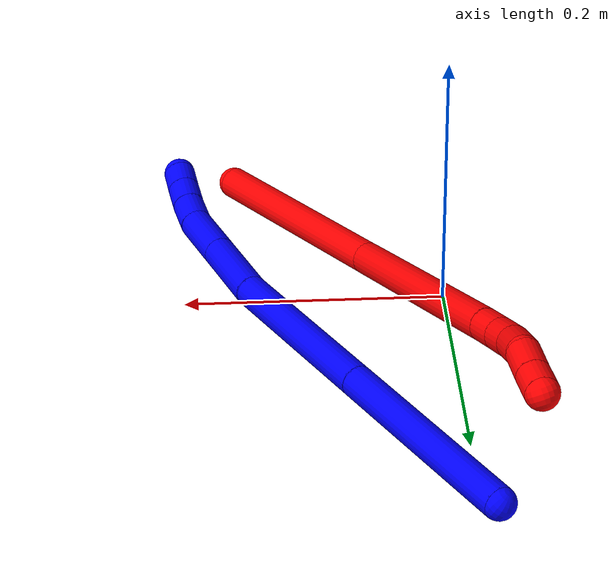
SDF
<sdf version="1.7">
 <world name="default">
  <plugin name="TubeGeneratorPlugin" filename="libtube_generator_plugin.so"/>
  <model name="photoneo_s_sensor">
   <static>1</static>
   <pose>0 0 2 1.57079 1.57079 3.14159</pose>
   <link name="link">
    <inertial><mass>0.1</mass></inertial>
    <sensor name="sensor" type="depth">
     <update_rate>30</update_rate>
     <camera>
      <horizontal_fov>1.22</horizontal_fov>
      <image><width>1920</width><height>1200</height><format>B8G8R8</format></image>
      <clip><near>0.1</near><far>4</far></clip>
      <depth_camera><output>points</output></depth_camera>
     </camera>
     <plugin name="camera_plugin" filename="libgazebo_ros_depth_camera.so">
      <baseline>0.2</baseline>
      <alwaysOn>1</alwaysOn>
      <updateRate>0.0</updateRate>
      <cameraName>camera_ir</cameraName>
      <imageTopicName>/camera/color/image_raw</imageTopicName>
      <cameraInfoTopicName>/camera/color/camera_info</cameraInfoTopicName>
      <depthImageTopicName>/camera/depth/image_raw</depthImageTopicName>
      <depthImageCameraInfoTopicName>/camera/depth/camera_info</depthImageCameraInfoTopicName>
      <pointCloudTopicName>/camera/depth/points</pointCloudTopicName>
      <frameName>fr_optical</frameName>
      <pointCloudCutoff>0.1</pointCloudCutoff>
      <pointCloudCutoffMax>2.0</pointCloudCutoffMax>
      <distortionK1>0</distortionK1>
      <distortionK2>0</distortionK2>
      <distortionK3>0</distortionK3>
      <distortionT1>0</distortionT1>
      <distortionT2>0</distortionT2>
      <CxPrime>0</CxPrime>
      <Cx>0</Cx>
      <Cy>0</Cy>
      <focalLength>0</focalLength>
      <hackBaseline>0</hackBaseline>
     </plugin>
    </sensor>
   </link>
  </model>
  <gravity>0 0 -9.8</gravity>
  <magnetic_field>6e-06 2.3e-05 -4.2e-05</magnetic_field>
  <atmosphere type="adiabatic"/>
  <physics name="default_physics" default="0" type="ode">
   <max_step_size>0.003</max_step_size>
   <real_time_factor>1</real_time_factor>
   <real_time_update_rate>1000</real_time_update_rate>
   <max_contacts>10000</max_contacts>
   <ode>
    <solver>
     <type>quick</type>
     <iters>100</iters>
     <sor>1.3</sor>
     <use_dynamic_moi_rescaling>0</use_dynamic_moi_rescaling>
    </solver>
    <constraints>
     <contact_max_correcting_vel>0</contact_max_correcting_vel>
     <contact_surface_layer>0.001</contact_surface_layer>
     <cfm>0</cfm>
     <erp>0.2</erp>
    </constraints>
   </ode>
  </physics>
  <scene><ambient>0.4 0.4 0.4 1</ambient><background>0.7 0.7 0.7 1</background><shadows>0</shadows></scene>
  <audio><device>default</device></audio>
  <spherical_coordinates>
   <surface_model>EARTH_WGS84</surface_model>
   <latitude_deg>0</latitude_deg>
   <longitude_deg>0</longitude_deg>
   <elevation>0</elevation>
   <heading_deg>0</heading_deg>
  </spherical_coordinates>
  <model name="bin">
   <static>1</static>
   <link name="bottom">
    <collision name="collision-bottom">
     <pose>0 0 -0.01 0 -0 0</pose>
     <geometry><box><size>0.8 0.6 0.02</size></box></geometry>
     <surface>
      <friction><ode><mu>100</mu><mu2>100</mu2></ode></friction>
      <contact><collide_bitmask>65535</collide_bitmask></contact>
     </surface>
    </collision>
   </link>
   <link name="west_wall">
    <collision name="collision-west_wall">
     <pose>-0.41 0 0.1 0 -0 0</pose>
     <geometry><box><size>0.02 0.6 0.2</size></box></geometry>
     <surface>
      <friction><ode><mu>100</mu><mu2>100</mu2></ode></friction>
      <contact><collide_bitmask>65535</collide_bitmask></contact>
     </surface>
    </collision>
   </link>
   <link name="east_wall">
    <collision name="collision-east_wall">
     <pose>0.41 0 0.1 0 -0 0</pose>
     <geometry><box><size>0.02 0.6 0.2</size></box></geometry>
     <surface>
      <friction><ode><mu>100</mu><mu2>100</mu2></ode></friction>
      <contact><collide_bitmask>65535</collide_bitmask></contact>
     </surface>
    </collision>
   </link>
   <link name="south_wall">
    <collision name="collision-south_wall">
     <pose>0 -0.31 0.1 0 -0 0</pose>
     <geometry><box><size>0.8 0.02 0.2</size></box></geometry>
     <surface>
      <friction><ode><mu>100</mu><mu2>100</mu2></ode></friction>
      <contact><collide_bitmask>65535</collide_bitmask></contact>
     </surface>
    </collision>
   </link>
   <link name="north_wall">
    <collision name="collision-north_wall">
     <pose>0 0.31 0.1 0 -0 0</pose>
     <geometry><box><size>0.8 0.02 0.2</size></box></geometry>
     <surface>
      <friction><ode><mu>100</mu><mu2>100</mu2></ode></friction>
      <contact><collide_bitmask>65535</collide_bitmask></contact>
     </surface>
    </collision>
   </link>
  </model>
  <model name="1">
   <static>0</static>
   <link name="1">
    <collision name="collision-cylinder-e_1_1_4">
     <pose>0.042161 -0.06659 -0.033573 2.03778 0.514552 0.807647</pose>
     <geometry><cylinder><radius>0.0125</radius><length>0.171336</length></cylinder></geometry>
     <surface>
      <friction><ode><mu>1.16</mu><mu2>1.16</mu2><slip1>0</slip1><slip2>0</slip2></ode></friction>
      <contact><ode><kp>1e+06</kp><kd>1</kd><max_vel>0</max_vel><min_depth>0.001</min_depth></ode></contact>
     </surface>
    </collision>
    <visual name="visual-cylinder-e_1_1_4">
     <pose>0.042161 -0.06659 -0.033573 2.03778 0.514552 0.807647</pose>
     <geometry><cylinder><radius>0.0125</radius><length>0.171336</length></cylinder></geometry>
     <material><ambient>0 0 1 1</ambient></material>
    </visual>
    <collision name="collision-cylinder-e_2_4_5">
     <pose>0.118409 -0.193458 -0.098615 2.05194 0.464692 0.744504</pose>
     <geometry><cylinder><radius>0.0125</radius><length>0.152125</length></cylinder></geometry>
     <surface>
      <friction><ode><mu>1.16</mu><mu2>1.16</mu2><slip1>0</slip1><slip2>0</slip2></ode></friction>
      <contact><ode><kp>1e+06</kp><kd>1</kd><max_vel>0</max_vel><min_depth>0.001</min_depth></ode></contact>
     </surface>
    </collision>
    <visual name="visual-cylinder-e_2_4_5">
     <pose>0.118409 -0.193458 -0.098615 2.05194 0.464692 0.744504</pose>
     <geometry><cylinder><radius>0.0125</radius><length>0.152125</length></cylinder></geometry>
     <material><ambient>0 0 1 1</ambient></material>
    </visual>
    <collision name="collision-cylinder-e_3_5_6">
     <pose>0.164178 -0.281671 -0.141384 1.95517 0.369803 0.54122</pose>
     <geometry><cylinder><radius>0.0125</radius><length>0.064641</length></cylinder></geometry>
     <surface>
      <friction><ode><mu>1.16</mu><mu2>1.16</mu2><slip1>0</slip1><slip2>0</slip2></ode></friction>
      <contact><ode><kp>1e+06</kp><kd>1</kd><max_vel>0</max_vel><min_depth>0.001</min_depth></ode></contact>
     </surface>
    </collision>
    <visual name="visual-cylinder-e_3_5_6">
     <pose>0.164178 -0.281671 -0.141384 1.95517 0.369803 0.54122</pose>
     <geometry><cylinder><radius>0.0125</radius><length>0.064641</length></cylinder></geometry>
     <material><ambient>0 0 1 1</ambient></material>
    </visual>
    <collision name="collision-cylinder-e_4_6_7">
     <pose>0.185174 -0.329846 -0.160506 1.9396 0.405495 0.582625</pose>
     <geometry><cylinder><radius>0.0125</radius><length>0.047225</length></cylinder></geometry>
     <surface>
      <friction><ode><mu>1.16</mu><mu2>1.16</mu2><slip1>0</slip1><slip2>0</slip2></ode></friction>
      <contact><ode><kp>1e+06</kp><kd>1</kd><max_vel>0</max_vel><min_depth>0.001</min_depth></ode></contact>
     </surface>
    </collision>
    <visual name="visual-cylinder-e_4_6_7">
     <pose>0.185174 -0.329846 -0.160506 1.9396 0.405495 0.582625</pose>
     <geometry><cylinder><radius>0.0125</radius><length>0.047225</length></cylinder></geometry>
     <material><ambient>0 0 1 1</ambient></material>
    </visual>
    <collision name="collision-cylinder-e_5_7_8">
     <pose>0.198746 -0.361004 -0.170034 1.7258 0.367664 0.427835</pose>
     <geometry><cylinder><radius>0.0125</radius><length>0.023686</length></cylinder></geometry>
     <surface>
      <friction><ode><mu>1.16</mu><mu2>1.16</mu2><slip1>0</slip1><slip2>0</slip2></ode></friction>
      <contact><ode><kp>1e+06</kp><kd>1</kd><max_vel>0</max_vel><min_depth>0.001</min_depth></ode></contact>
     </surface>
    </collision>
    <visual name="visual-cylinder-e_5_7_8">
     <pose>0.198746 -0.361004 -0.170034 1.7258 0.367664 0.427835</pose>
     <geometry><cylinder><radius>0.0125</radius><length>0.023686</length></cylinder></geometry>
     <material><ambient>0 0 1 1</ambient></material>
    </visual>
    <collision name="collision-cylinder-e_6_8_9">
     <pose>0.206193 -0.381693 -0.17284 1.6829 0.313806 0.350396</pose>
     <geometry><cylinder><radius>0.0125</radius><length>0.020672</length></cylinder></geometry>
     <surface>
      <friction><ode><mu>1.16</mu><mu2>1.16</mu2><slip1>0</slip1><slip2>0</slip2></ode></friction>
      <contact><ode><kp>1e+06</kp><kd>1</kd><max_vel>0</max_vel><min_depth>0.001</min_depth></ode></contact>
     </surface>
    </collision>
    <visual name="visual-cylinder-e_6_8_9">
     <pose>0.206193 -0.381693 -0.17284 1.6829 0.313806 0.350396</pose>
     <geometry><cylinder><radius>0.0125</radius><length>0.020672</length></cylinder></geometry>
     <material><ambient>0 0 1 1</ambient></material>
    </visual>
    <collision name="collision-cylinder-e_7_9_2">
     <pose>0.212407 -0.401117 -0.174848 1.66459 0.302228 0.331472</pose>
     <geometry><cylinder><radius>0.0125</radius><length>0.020315</length></cylinder></geometry>
     <surface>
      <friction><ode><mu>1.16</mu><mu2>1.16</mu2><slip1>0</slip1><slip2>0</slip2></ode></friction>
      <contact><ode><kp>1e+06</kp><kd>1</kd><max_vel>0</max_vel><min_depth>0.001</min_depth></ode></contact>
     </surface>
    </collision>
    <visual name="visual-cylinder-e_7_9_2">
     <pose>0.212407 -0.401117 -0.174848 1.66459 0.302228 0.331472</pose>
     <geometry><cylinder><radius>0.0125</radius><length>0.020315</length></cylinder></geometry>
     <material><ambient>0 0 1 1</ambient></material>
    </visual>
    <collision name="collision-sphere-2">
     <pose>0.21543 -0.410771 -0.175757 0 -0 0</pose>
     <geometry><sphere><radius>0.0125</radius></sphere></geometry>
     <surface>
      <friction><ode><mu>1.16</mu><mu2>1.16</mu2><slip1>0</slip1><slip2>0</slip2></ode></friction>
      <contact><ode><kp>1e+06</kp><kd>1</kd><max_vel>0</max_vel><min_depth>0.001</min_depth></ode></contact>
     </surface>
    </collision>
    <visual name="visual-sphere-2">
     <pose>0.21543 -0.410771 -0.175757 0 -0 0</pose>
     <geometry><sphere><radius>0.0125</radius></sphere></geometry>
     <material><ambient>0 0 1 1</ambient></material>
    </visual>
    <collision name="collision-sphere-9">
     <pose>0.209383 -0.391462 -0.17394 0 -0 0</pose>
     <geometry><sphere><radius>0.0125</radius></sphere></geometry>
     <surface>
      <friction><ode><mu>1.16</mu><mu2>1.16</mu2><slip1>0</slip1><slip2>0</slip2></ode></friction>
      <contact><ode><kp>1e+06</kp><kd>1</kd><max_vel>0</max_vel><min_depth>0.001</min_depth></ode></contact>
     </surface>
    </collision>
    <visual name="visual-sphere-9">
     <pose>0.209383 -0.391462 -0.17394 0 -0 0</pose>
     <geometry><sphere><radius>0.0125</radius></sphere></geometry>
     <material><ambient>0 0 1 1</ambient></material>
    </visual>
    <collision name="collision-sphere-4">
     <pose>0.084322 -0.133181 -0.067146 0 -0 0</pose>
     <geometry><sphere><radius>0.0125</radius></sphere></geometry>
     <surface>
      <friction><ode><mu>1.16</mu><mu2>1.16</mu2><slip1>0</slip1><slip2>0</slip2></ode></friction>
      <contact><ode><kp>1e+06</kp><kd>1</kd><max_vel>0</max_vel><min_depth>0.001</min_depth></ode></contact>
     </surface>
    </collision>
    <visual name="visual-sphere-4">
     <pose>0.084322 -0.133181 -0.067146 0 -0 0</pose>
     <geometry><sphere><radius>0.0125</radius></sphere></geometry>
     <material><ambient>0 0 1 1</ambient></material>
    </visual>
    <collision name="collision-sphere-1">
     <geometry><sphere><radius>0.0125</radius></sphere></geometry>
     <surface>
      <friction><ode><mu>1.16</mu><mu2>1.16</mu2><slip1>0</slip1><slip2>0</slip2></ode></friction>
      <contact><ode><kp>1e+06</kp><kd>1</kd><max_vel>0</max_vel><min_depth>0.001</min_depth></ode></contact>
     </surface>
    </collision>
    <visual name="visual-sphere-1">
     <geometry><sphere><radius>0.0125</radius></sphere></geometry>
     <material><ambient>0 0 1 1</ambient></material>
    </visual>
    <collision name="collision-sphere-8">
     <pose>0.203002 -0.371923 -0.171741 0 -0 0</pose>
     <geometry><sphere><radius>0.0125</radius></sphere></geometry>
     <surface>
      <friction><ode><mu>1.16</mu><mu2>1.16</mu2><slip1>0</slip1><slip2>0</slip2></ode></friction>
      <contact><ode><kp>1e+06</kp><kd>1</kd><max_vel>0</max_vel><min_depth>0.001</min_depth></ode></contact>
     </surface>
    </collision>
    <visual name="visual-sphere-8">
     <pose>0.203002 -0.371923 -0.171741 0 -0 0</pose>
     <geometry><sphere><radius>0.0125</radius></sphere></geometry>
     <material><ambient>0 0 1 1</ambient></material>
    </visual>
    <collision name="collision-sphere-5">
     <pose>0.152496 -0.253734 -0.130084 0 -0 0</pose>
     <geometry><sphere><radius>0.0125</radius></sphere></geometry>
     <surface>
      <friction><ode><mu>1.16</mu><mu2>1.16</mu2><slip1>0</slip1><slip2>0</slip2></ode></friction>
      <contact><ode><kp>1e+06</kp><kd>1</kd><max_vel>0</max_vel><min_depth>0.001</min_depth></ode></contact>
     </surface>
    </collision>
    <visual name="visual-sphere-5">
     <pose>0.152496 -0.253734 -0.130084 0 -0 0</pose>
     <geometry><sphere><radius>0.0125</radius></sphere></geometry>
     <material><ambient>0 0 1 1</ambient></material>
    </visual>
    <collision name="collision-sphere-6">
     <pose>0.17586 -0.309607 -0.152684 0 -0 0</pose>
     <geometry><sphere><radius>0.0125</radius></sphere></geometry>
     <surface>
      <friction><ode><mu>1.16</mu><mu2>1.16</mu2><slip1>0</slip1><slip2>0</slip2></ode></friction>
      <contact><ode><kp>1e+06</kp><kd>1</kd><max_vel>0</max_vel><min_depth>0.001</min_depth></ode></contact>
     </surface>
    </collision>
    <visual name="visual-sphere-6">
     <pose>0.17586 -0.309607 -0.152684 0 -0 0</pose>
     <geometry><sphere><radius>0.0125</radius></sphere></geometry>
     <material><ambient>0 0 1 1</ambient></material>
    </visual>
    <collision name="collision-sphere-7">
     <pose>0.194489 -0.350085 -0.168328 0 -0 0</pose>
     <geometry><sphere><radius>0.0125</radius></sphere></geometry>
     <surface>
      <friction><ode><mu>1.16</mu><mu2>1.16</mu2><slip1>0</slip1><slip2>0</slip2></ode></friction>
      <contact><ode><kp>1e+06</kp><kd>1</kd><max_vel>0</max_vel><min_depth>0.001</min_depth></ode></contact>
     </surface>
    </collision>
    <visual name="visual-sphere-7">
     <pose>0.194489 -0.350085 -0.168328 0 -0 0</pose>
     <geometry><sphere><radius>0.0125</radius></sphere></geometry>
     <material><ambient>0 0 1 1</ambient></material>
    </visual>
    <inertial>
     <pose>0.115758 -0.198427 -0.097251 0 -0 0</pose>
     <mass>0.5</mass>
     <inertia>
      <ixx>0.000971</ixx>
      <ixy>0</ixy>
      <ixz>0</ixz>
      <iyy>0.000413</iyy>
      <iyz>0</iyz>
      <izz>0.000231</izz>
     </inertia>
    </inertial>
   </link>
   <pose>-0.009936 0.284588 0.012289 -0.129696 -0.563795 -0.079627</pose>
  </model>
  <model name="2">
   <static>0</static>
   <link name="2">
    <collision name="collision-cylinder-e_1_1_4">
     <pose>-0.00629 0.08406 0.047178 -1.05936 -0.065163 0.038161</pose>
     <geometry><cylinder><radius>0.0125</radius><length>0.193198</length></cylinder></geometry>
     <surface>
      <friction><ode><mu>1.16</mu><mu2>1.16</mu2><slip1>0</slip1><slip2>0</slip2></ode></friction>
      <contact><ode><kp>1e+06</kp><kd>1</kd><max_vel>0</max_vel><min_depth>0.001</min_depth></ode></contact>
     </surface>
    </collision>
    <visual name="visual-cylinder-e_1_1_4">
     <pose>-0.00629 0.08406 0.047178 -1.05936 -0.065163 0.038161</pose>
     <geometry><cylinder><radius>0.0125</radius><length>0.193198</length></cylinder></geometry>
     <material><ambient>1 0 0 1</ambient></material>
    </visual>
    <collision name="collision-cylinder-e_2_4_5">
     <pose>-0.031264 0.252585 0.129419 -1.17734 -0.201522 0.134795</pose>
     <geometry><cylinder><radius>0.0125</radius><length>0.186686</length></cylinder></geometry>
     <surface>
      <friction><ode><mu>1.16</mu><mu2>1.16</mu2><slip1>0</slip1><slip2>0</slip2></ode></friction>
      <contact><ode><kp>1e+06</kp><kd>1</kd><max_vel>0</max_vel><min_depth>0.001</min_depth></ode></contact>
     </surface>
    </collision>
    <visual name="visual-cylinder-e_2_4_5">
     <pose>-0.031264 0.252585 0.129419 -1.17734 -0.201522 0.134795</pose>
     <geometry><cylinder><radius>0.0125</radius><length>0.186686</length></cylinder></geometry>
     <material><ambient>1 0 0 1</ambient></material>
    </visual>
    <collision name="collision-cylinder-e_3_5_6">
     <pose>-0.052087 0.346687 0.168852 -1.14494 -0.199512 0.128827</pose>
     <geometry><cylinder><radius>0.0125</radius><length>0.02159</length></cylinder></geometry>
     <surface>
      <friction><ode><mu>1.16</mu><mu2>1.16</mu2><slip1>0</slip1><slip2>0</slip2></ode></friction>
      <contact><ode><kp>1e+06</kp><kd>1</kd><max_vel>0</max_vel><min_depth>0.001</min_depth></ode></contact>
     </surface>
    </collision>
    <visual name="visual-cylinder-e_3_5_6">
     <pose>-0.052087 0.346687 0.168852 -1.14494 -0.199512 0.128827</pose>
     <geometry><cylinder><radius>0.0125</radius><length>0.02159</length></cylinder></geometry>
     <material><ambient>1 0 0 1</ambient></material>
    </visual>
    <collision name="collision-cylinder-e_4_6_7">
     <pose>-0.057325 0.366237 0.176839 -1.22101 -0.285591 0.200514</pose>
     <geometry><cylinder><radius>0.0125</radius><length>0.021997</length></cylinder></geometry>
     <surface>
      <friction><ode><mu>1.16</mu><mu2>1.16</mu2><slip1>0</slip1><slip2>0</slip2></ode></friction>
      <contact><ode><kp>1e+06</kp><kd>1</kd><max_vel>0</max_vel><min_depth>0.001</min_depth></ode></contact>
     </surface>
    </collision>
    <visual name="visual-cylinder-e_4_6_7">
     <pose>-0.057325 0.366237 0.176839 -1.22101 -0.285591 0.200514</pose>
     <geometry><cylinder><radius>0.0125</radius><length>0.021997</length></cylinder></geometry>
     <material><ambient>1 0 0 1</ambient></material>
    </visual>
    <collision name="collision-cylinder-e_5_7_8">
     <pose>-0.06701 0.38855 0.183928 -1.29776 -0.472787 0.361425</pose>
     <geometry><cylinder><radius>0.0125</radius><length>0.028925</length></cylinder></geometry>
     <surface>
      <friction><ode><mu>1.16</mu><mu2>1.16</mu2><slip1>0</slip1><slip2>0</slip2></ode></friction>
      <contact><ode><kp>1e+06</kp><kd>1</kd><max_vel>0</max_vel><min_depth>0.001</min_depth></ode></contact>
     </surface>
    </collision>
    <visual name="visual-cylinder-e_5_7_8">
     <pose>-0.06701 0.38855 0.183928 -1.29776 -0.472787 0.361425</pose>
     <geometry><cylinder><radius>0.0125</radius><length>0.028925</length></cylinder></geometry>
     <material><ambient>1 0 0 1</ambient></material>
    </visual>
    <collision name="collision-cylinder-e_6_8_9">
     <pose>-0.079614 0.410223 0.194752 -0.900487 -0.470477 0.230669</pose>
     <geometry><cylinder><radius>0.0125</radius><length>0.026556</length></cylinder></geometry>
     <surface>
      <friction><ode><mu>1.16</mu><mu2>1.16</mu2><slip1>0</slip1><slip2>0</slip2></ode></friction>
      <contact><ode><kp>1e+06</kp><kd>1</kd><max_vel>0</max_vel><min_depth>0.001</min_depth></ode></contact>
     </surface>
    </collision>
    <visual name="visual-cylinder-e_6_8_9">
     <pose>-0.079614 0.410223 0.194752 -0.900487 -0.470477 0.230669</pose>
     <geometry><cylinder><radius>0.0125</radius><length>0.026556</length></cylinder></geometry>
     <material><ambient>1 0 0 1</ambient></material>
    </visual>
    <collision name="collision-cylinder-e_7_9_2">
     <pose>-0.090152 0.426991 0.207952 -0.908161 -0.443835 0.219379</pose>
     <geometry><cylinder><radius>0.0125</radius><length>0.021048</length></cylinder></geometry>
     <surface>
      <friction><ode><mu>1.16</mu><mu2>1.16</mu2><slip1>0</slip1><slip2>0</slip2></ode></friction>
      <contact><ode><kp>1e+06</kp><kd>1</kd><max_vel>0</max_vel><min_depth>0.001</min_depth></ode></contact>
     </surface>
    </collision>
    <visual name="visual-cylinder-e_7_9_2">
     <pose>-0.090152 0.426991 0.207952 -0.908161 -0.443835 0.219379</pose>
     <geometry><cylinder><radius>0.0125</radius><length>0.021048</length></cylinder></geometry>
     <material><ambient>1 0 0 1</ambient></material>
    </visual>
    <collision name="collision-sphere-2">
     <pose>-0.094672 0.434484 0.213799 0 -0 0</pose>
     <geometry><sphere><radius>0.0125</radius></sphere></geometry>
     <surface>
      <friction><ode><mu>1.16</mu><mu2>1.16</mu2><slip1>0</slip1><slip2>0</slip2></ode></friction>
      <contact><ode><kp>1e+06</kp><kd>1</kd><max_vel>0</max_vel><min_depth>0.001</min_depth></ode></contact>
     </surface>
    </collision>
    <visual name="visual-sphere-2">
     <pose>-0.094672 0.434484 0.213799 0 -0 0</pose>
     <geometry><sphere><radius>0.0125</radius></sphere></geometry>
     <material><ambient>1 0 0 1</ambient></material>
    </visual>
    <collision name="collision-sphere-9">
     <pose>-0.085633 0.419498 0.202105 0 -0 0</pose>
     <geometry><sphere><radius>0.0125</radius></sphere></geometry>
     <surface>
      <friction><ode><mu>1.16</mu><mu2>1.16</mu2><slip1>0</slip1><slip2>0</slip2></ode></friction>
      <contact><ode><kp>1e+06</kp><kd>1</kd><max_vel>0</max_vel><min_depth>0.001</min_depth></ode></contact>
     </surface>
    </collision>
    <visual name="visual-sphere-9">
     <pose>-0.085633 0.419498 0.202105 0 -0 0</pose>
     <geometry><sphere><radius>0.0125</radius></sphere></geometry>
     <material><ambient>1 0 0 1</ambient></material>
    </visual>
    <collision name="collision-sphere-4">
     <pose>-0.012581 0.168119 0.094356 0 -0 0</pose>
     <geometry><sphere><radius>0.0125</radius></sphere></geometry>
     <surface>
      <friction><ode><mu>1.16</mu><mu2>1.16</mu2><slip1>0</slip1><slip2>0</slip2></ode></friction>
      <contact><ode><kp>1e+06</kp><kd>1</kd><max_vel>0</max_vel><min_depth>0.001</min_depth></ode></contact>
     </surface>
    </collision>
    <visual name="visual-sphere-4">
     <pose>-0.012581 0.168119 0.094356 0 -0 0</pose>
     <geometry><sphere><radius>0.0125</radius></sphere></geometry>
     <material><ambient>1 0 0 1</ambient></material>
    </visual>
    <collision name="collision-sphere-1">
     <geometry><sphere><radius>0.0125</radius></sphere></geometry>
     <surface>
      <friction><ode><mu>1.16</mu><mu2>1.16</mu2><slip1>0</slip1><slip2>0</slip2></ode></friction>
      <contact><ode><kp>1e+06</kp><kd>1</kd><max_vel>0</max_vel><min_depth>0.001</min_depth></ode></contact>
     </surface>
    </collision>
    <visual name="visual-sphere-1">
     <geometry><sphere><radius>0.0125</radius></sphere></geometry>
     <material><ambient>1 0 0 1</ambient></material>
    </visual>
    <collision name="collision-sphere-8">
     <pose>-0.073595 0.400949 0.1874 0 -0 0</pose>
     <geometry><sphere><radius>0.0125</radius></sphere></geometry>
     <surface>
      <friction><ode><mu>1.16</mu><mu2>1.16</mu2><slip1>0</slip1><slip2>0</slip2></ode></friction>
      <contact><ode><kp>1e+06</kp><kd>1</kd><max_vel>0</max_vel><min_depth>0.001</min_depth></ode></contact>
     </surface>
    </collision>
    <visual name="visual-sphere-8">
     <pose>-0.073595 0.400949 0.1874 0 -0 0</pose>
     <geometry><sphere><radius>0.0125</radius></sphere></geometry>
     <material><ambient>1 0 0 1</ambient></material>
    </visual>
    <collision name="collision-sphere-5">
     <pose>-0.049948 0.337051 0.164481 0 -0 0</pose>
     <geometry><sphere><radius>0.0125</radius></sphere></geometry>
     <surface>
      <friction><ode><mu>1.16</mu><mu2>1.16</mu2><slip1>0</slip1><slip2>0</slip2></ode></friction>
      <contact><ode><kp>1e+06</kp><kd>1</kd><max_vel>0</max_vel><min_depth>0.001</min_depth></ode></contact>
     </surface>
    </collision>
    <visual name="visual-sphere-5">
     <pose>-0.049948 0.337051 0.164481 0 -0 0</pose>
     <geometry><sphere><radius>0.0125</radius></sphere></geometry>
     <material><ambient>1 0 0 1</ambient></material>
    </visual>
    <collision name="collision-sphere-6">
     <pose>-0.054227 0.356323 0.173223 0 -0 0</pose>
     <geometry><sphere><radius>0.0125</radius></sphere></geometry>
     <surface>
      <friction><ode><mu>1.16</mu><mu2>1.16</mu2><slip1>0</slip1><slip2>0</slip2></ode></friction>
      <contact><ode><kp>1e+06</kp><kd>1</kd><max_vel>0</max_vel><min_depth>0.001</min_depth></ode></contact>
     </surface>
    </collision>
    <visual name="visual-sphere-6">
     <pose>-0.054227 0.356323 0.173223 0 -0 0</pose>
     <geometry><sphere><radius>0.0125</radius></sphere></geometry>
     <material><ambient>1 0 0 1</ambient></material>
    </visual>
    <collision name="collision-sphere-7">
     <pose>-0.060424 0.376151 0.180456 0 -0 0</pose>
     <geometry><sphere><radius>0.0125</radius></sphere></geometry>
     <surface>
      <friction><ode><mu>1.16</mu><mu2>1.16</mu2><slip1>0</slip1><slip2>0</slip2></ode></friction>
      <contact><ode><kp>1e+06</kp><kd>1</kd><max_vel>0</max_vel><min_depth>0.001</min_depth></ode></contact>
     </surface>
    </collision>
    <visual name="visual-sphere-7">
     <pose>-0.060424 0.376151 0.180456 0 -0 0</pose>
     <geometry><sphere><radius>0.0125</radius></sphere></geometry>
     <material><ambient>1 0 0 1</ambient></material>
    </visual>
    <inertial>
     <pose>-0.030775 0.220111 0.11136 0 -0 0</pose>
     <mass>0.5</mass>
     <inertia>
      <ixx>0.00124</ixx>
      <ixy>0</ixy>
      <ixz>0</ixz>
      <iyy>0.000659</iyy>
      <iyz>0</iyz>
      <izz>-0.000865</izz>
     </inertia>
    </inertial>
   </link>
   <pose>0.156886 -0.169241 0.012159 2.51669 0.030686 -2.54227</pose>
  </model>
 </world>
</sdf>
